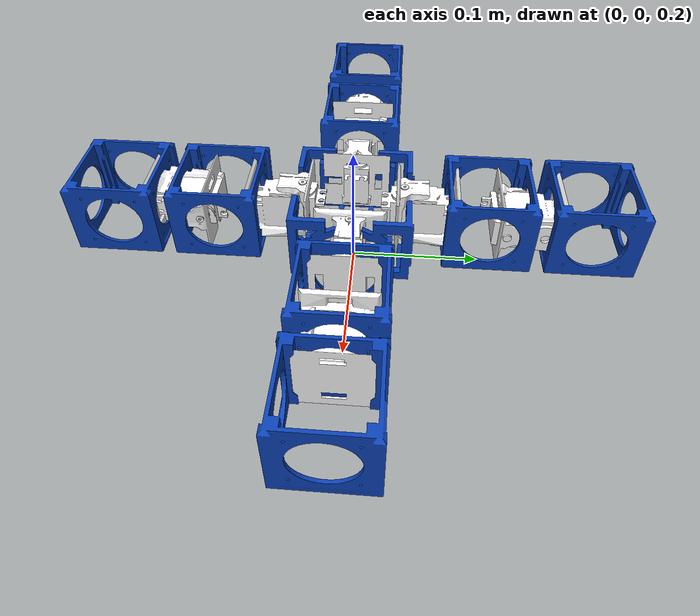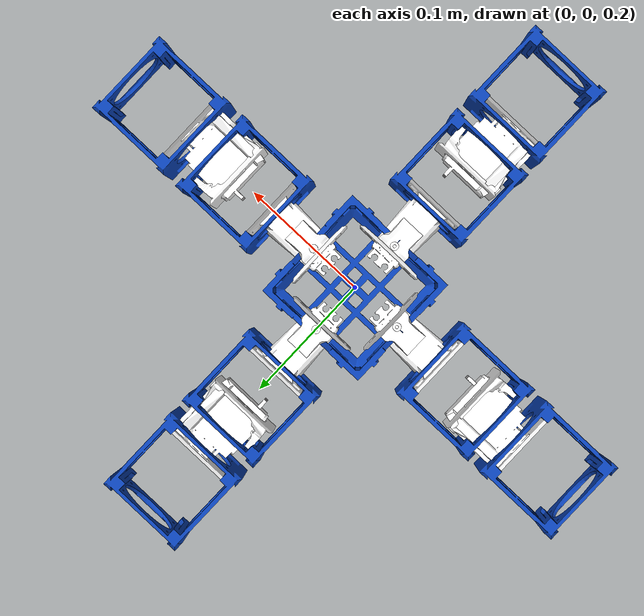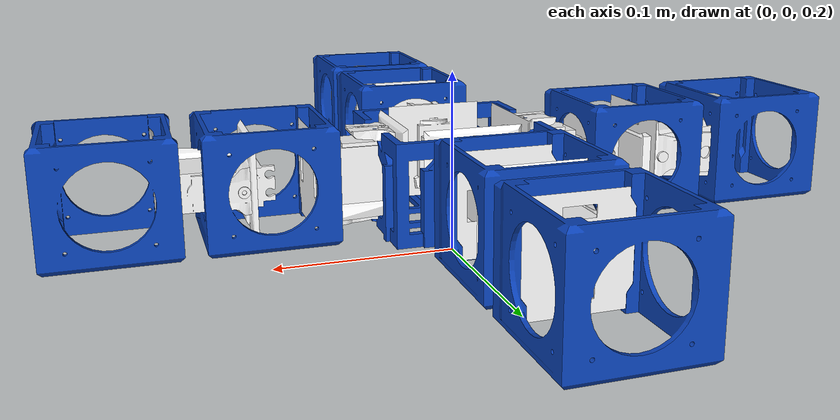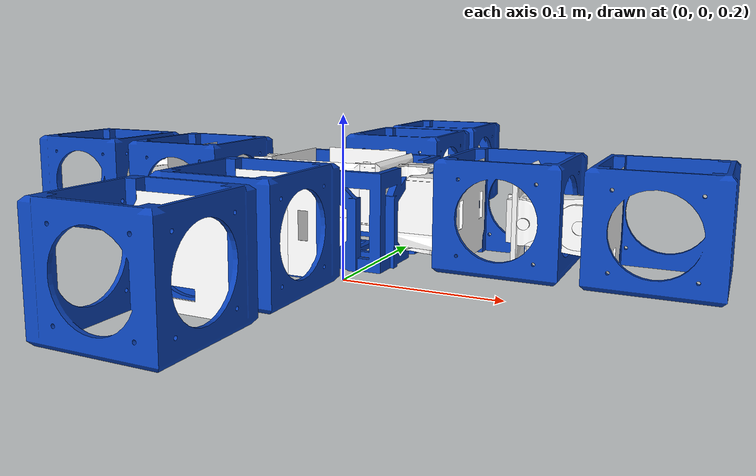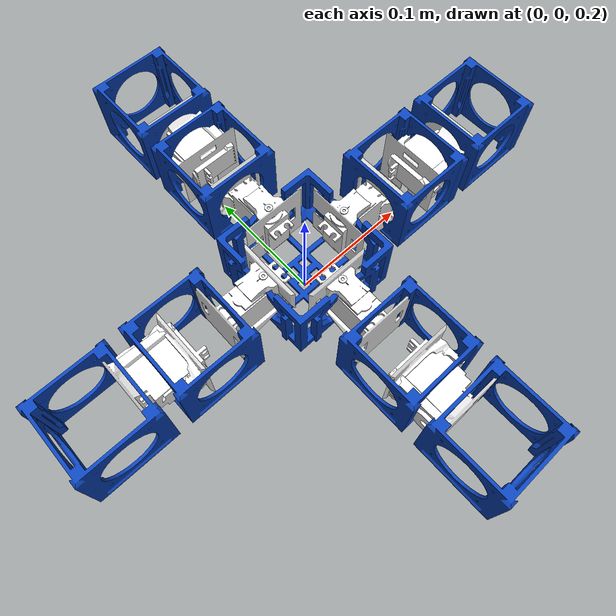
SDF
<?xml version="1.0" ?>
<sdf version="1.6">
	<model name="example_spider">
		<pose>0.000000e+00 0.000000e+00 2.500000e-01 0.000000e+00 -0.000000e+00 0.000000e+00</pose>
		<joint name="component_S_ActiveHinge__joint" type="revolute">
			<pose>-9.430986e-18 3.110825e-02 -1.755849e-17 1.570796e+00 -3.330669e-16 -1.570796e+00</pose>
			<parent>Core</parent>
			<child>S_Leg</child>
			<axis>
				<xyz>0.000000e+00 1.000000e+00 0.000000e+00</xyz>
				<use_parent_model_frame>0</use_parent_model_frame>
				<limit>
					<lower>-7.853982e-01</lower>
					<upper>7.853982e-01</upper>
					<effort>1.765800e-01</effort>
					<velocity>5.235988e+00</velocity>
				</limit>
			</axis>
		</joint>
		<joint name="component_SNN_ActiveHinge__joint" type="revolute">
			<pose>-1.300223e-17 2.747656e-02 -1.539957e-17 -9.420555e-16 -6.280370e-16 -1.570796e+00</pose>
			<parent>S_Leg</parent>
			<child>SNN_Leg</child>
			<axis>
				<xyz>0.000000e+00 1.000000e+00 0.000000e+00</xyz>
				<use_parent_model_frame>0</use_parent_model_frame>
				<limit>
					<lower>-7.853982e-01</lower>
					<upper>7.853982e-01</upper>
					<effort>1.765800e-01</effort>
					<velocity>5.235988e+00</velocity>
				</limit>
			</axis>
		</joint>
		<joint name="component_N_ActiveHinge__joint" type="revolute">
			<pose>-8.717806e-18 -3.110825e-02 1.048457e-17 1.570796e+00 3.330669e-16 1.570796e+00</pose>
			<parent>Core</parent>
			<child>N_Leg</child>
			<axis>
				<xyz>0.000000e+00 1.000000e+00 0.000000e+00</xyz>
				<use_parent_model_frame>0</use_parent_model_frame>
				<limit>
					<lower>-7.853982e-01</lower>
					<upper>7.853982e-01</upper>
					<effort>1.765800e-01</effort>
					<velocity>5.235988e+00</velocity>
				</limit>
			</axis>
		</joint>
		<joint name="component_NNN_ActiveHinge__joint" type="revolute">
			<pose>1.194569e-17 -2.747656e-02 1.294222e-17 -4.710277e-16 4.710277e-16 1.570796e+00</pose>
			<parent>N_Leg</parent>
			<child>NNN_Leg</child>
			<axis>
				<xyz>0.000000e+00 1.000000e+00 0.000000e+00</xyz>
				<use_parent_model_frame>0</use_parent_model_frame>
				<limit>
					<lower>-7.853982e-01</lower>
					<upper>7.853982e-01</upper>
					<effort>1.765800e-01</effort>
					<velocity>5.235988e+00</velocity>
				</limit>
			</axis>
		</joint>
		<joint name="component_E_ActiveHinge__joint" type="revolute">
			<pose>-3.110825e-02 0.000000e+00 0.000000e+00 1.570796e+00 -0.000000e+00 -0.000000e+00</pose>
			<parent>Core</parent>
			<child>E_Leg</child>
			<axis>
				<xyz>0.000000e+00 1.000000e+00 0.000000e+00</xyz>
				<use_parent_model_frame>0</use_parent_model_frame>
				<limit>
					<lower>-7.853982e-01</lower>
					<upper>7.853982e-01</upper>
					<effort>1.765800e-01</effort>
					<velocity>5.235988e+00</velocity>
				</limit>
			</axis>
		</joint>
		<joint name="component_ENN_ActiveHinge__joint" type="revolute">
			<pose>-2.747656e-02 0.000000e+00 0.000000e+00 0.000000e+00 -0.000000e+00 0.000000e+00</pose>
			<parent>E_Leg</parent>
			<child>ENN_Leg</child>
			<axis>
				<xyz>0.000000e+00 1.000000e+00 0.000000e+00</xyz>
				<use_parent_model_frame>0</use_parent_model_frame>
				<limit>
					<lower>-7.853982e-01</lower>
					<upper>7.853982e-01</upper>
					<effort>1.765800e-01</effort>
					<velocity>5.235988e+00</velocity>
				</limit>
			</axis>
		</joint>
		<joint name="component_W_ActiveHinge__joint" type="revolute">
			<pose>3.110825e-02 0.000000e+00 0.000000e+00 1.570796e+00 -0.000000e+00 3.141593e+00</pose>
			<parent>Core</parent>
			<child>W_Leg</child>
			<axis>
				<xyz>0.000000e+00 1.000000e+00 0.000000e+00</xyz>
				<use_parent_model_frame>0</use_parent_model_frame>
				<limit>
					<lower>-7.853982e-01</lower>
					<upper>7.853982e-01</upper>
					<effort>1.765800e-01</effort>
					<velocity>5.235988e+00</velocity>
				</limit>
			</axis>
		</joint>
		<joint name="component_WNN_ActiveHinge__joint" type="revolute">
			<pose>2.747656e-02 0.000000e+00 0.000000e+00 0.000000e+00 -0.000000e+00 3.141593e+00</pose>
			<parent>W_Leg</parent>
			<child>WNN_Leg</child>
			<axis>
				<xyz>0.000000e+00 1.000000e+00 0.000000e+00</xyz>
				<use_parent_model_frame>0</use_parent_model_frame>
				<limit>
					<lower>-7.853982e-01</lower>
					<upper>7.853982e-01</upper>
					<effort>1.765800e-01</effort>
					<velocity>5.235988e+00</velocity>
				</limit>
			</axis>
		</joint>
		<link name="Core">
			<pose>1.400054e-19 0.000000e+00 0.000000e+00 0.000000e+00 -0.000000e+00 0.000000e+00</pose>
			<self_collide>True</self_collide>
			<sensor name="core-imu_sensor" type="imu">
				<pose>-1.400054e-19 0.000000e+00 0.000000e+00 0.000000e+00 -0.000000e+00 0.000000e+00</pose>
				<always_on>True</always_on>
			</sensor>
			<visual name="component__CoreComponent__box_visual">
				<pose>-1.400054e-19 0.000000e+00 0.000000e+00 0.000000e+00 -0.000000e+00 0.000000e+00</pose>
				<material>
					<ambient>0.04 0.26 0.72 1.0</ambient>
					<diffuse>0.04 0.26 0.72 1.0</diffuse>
					<specular>0.1 0.1 0.1 1.0</specular>
				</material>
				<geometry>
					<mesh>
						<uri>model://rg_robot/meshes/CoreComponent.dae</uri>
					</mesh>
				</geometry>
			</visual>
			<collision name="component__CoreComponent__box_collision">
				<pose>-1.400054e-19 0.000000e+00 0.000000e+00 0.000000e+00 -0.000000e+00 0.000000e+00</pose>
				<surface>
					<contact>
						<ode>
							<kd>3.333333e+06</kd>
							<kp>9.000000e+04</kp>
						</ode>
					</contact>
					<friction>
						<ode>
							<mu>1.000000e+00</mu>
							<mu2>1.000000e+00</mu2>
							<slip1>1.000000e-02</slip1>
							<slip2>1.000000e-02</slip2>
						</ode>
						<bullet>
							<friction>1.000000e+00</friction>
							<friction2>1.000000e+00</friction2>
						</bullet>
					</friction>
				</surface>
				<geometry>
					<box>
						<size>8.900000e-02 8.900000e-02 4.500000e-02</size>
					</box>
				</geometry>
			</collision>
			<visual name="component_S_ActiveHinge__frame_visual">
				<pose>2.302485e-18 -5.550000e-02 6.106227e-19 1.570796e+00 -5.551115e-17 -1.570796e+00</pose>
				<material>
					<ambient>0.98 0.98 0.98 1.0</ambient>
					<diffuse>0.98 0.98 0.98 1.0</diffuse>
					<specular>0.1 0.1 0.1 1.0</specular>
				</material>
				<geometry>
					<mesh>
						<uri>model://rg_robot/meshes/ActiveHinge_Frame.dae</uri>
					</mesh>
				</geometry>
			</visual>
			<collision name="component_S_ActiveHinge__frame_collision">
				<pose>2.302485e-18 -5.550000e-02 6.106227e-19 1.570796e+00 -5.551115e-17 -1.570796e+00</pose>
				<surface>
					<contact>
						<ode>
							<kd>3.333333e+06</kd>
							<kp>9.000000e+04</kp>
						</ode>
					</contact>
					<friction>
						<ode>
							<mu>1.000000e+00</mu>
							<mu2>1.000000e+00</mu2>
							<slip1>1.000000e-02</slip1>
							<slip2>1.000000e-02</slip2>
						</ode>
						<bullet>
							<friction>1.000000e+00</friction>
							<friction2>1.000000e+00</friction2>
						</bullet>
					</friction>
				</surface>
				<geometry>
					<box>
						<size>2.200000e-02 3.575000e-02 1.000000e-02</size>
					</box>
				</geometry>
			</collision>
			<visual name="component_N_ActiveHinge__frame_visual">
				<pose>2.302485e-18 5.550000e-02 -6.106227e-19 1.570796e+00 5.551115e-17 1.570796e+00</pose>
				<material>
					<ambient>0.98 0.98 0.98 1.0</ambient>
					<diffuse>0.98 0.98 0.98 1.0</diffuse>
					<specular>0.1 0.1 0.1 1.0</specular>
				</material>
				<geometry>
					<mesh>
						<uri>model://rg_robot/meshes/ActiveHinge_Frame.dae</uri>
					</mesh>
				</geometry>
			</visual>
			<collision name="component_N_ActiveHinge__frame_collision">
				<pose>2.302485e-18 5.550000e-02 -6.106227e-19 1.570796e+00 5.551115e-17 1.570796e+00</pose>
				<surface>
					<contact>
						<ode>
							<kd>3.333333e+06</kd>
							<kp>9.000000e+04</kp>
						</ode>
					</contact>
					<friction>
						<ode>
							<mu>1.000000e+00</mu>
							<mu2>1.000000e+00</mu2>
							<slip1>1.000000e-02</slip1>
							<slip2>1.000000e-02</slip2>
						</ode>
						<bullet>
							<friction>1.000000e+00</friction>
							<friction2>1.000000e+00</friction2>
						</bullet>
					</friction>
				</surface>
				<geometry>
					<box>
						<size>2.200000e-02 3.575000e-02 1.000000e-02</size>
					</box>
				</geometry>
			</collision>
			<visual name="component_E_ActiveHinge__frame_visual">
				<pose>5.550000e-02 0.000000e+00 0.000000e+00 1.570796e+00 -0.000000e+00 -0.000000e+00</pose>
				<material>
					<ambient>0.98 0.98 0.98 1.0</ambient>
					<diffuse>0.98 0.98 0.98 1.0</diffuse>
					<specular>0.1 0.1 0.1 1.0</specular>
				</material>
				<geometry>
					<mesh>
						<uri>model://rg_robot/meshes/ActiveHinge_Frame.dae</uri>
					</mesh>
				</geometry>
			</visual>
			<collision name="component_E_ActiveHinge__frame_collision">
				<pose>5.550000e-02 0.000000e+00 0.000000e+00 1.570796e+00 -0.000000e+00 -0.000000e+00</pose>
				<surface>
					<contact>
						<ode>
							<kd>3.333333e+06</kd>
							<kp>9.000000e+04</kp>
						</ode>
					</contact>
					<friction>
						<ode>
							<mu>1.000000e+00</mu>
							<mu2>1.000000e+00</mu2>
							<slip1>1.000000e-02</slip1>
							<slip2>1.000000e-02</slip2>
						</ode>
						<bullet>
							<friction>1.000000e+00</friction>
							<friction2>1.000000e+00</friction2>
						</bullet>
					</friction>
				</surface>
				<geometry>
					<box>
						<size>2.200000e-02 3.575000e-02 1.000000e-02</size>
					</box>
				</geometry>
			</collision>
			<visual name="component_W_ActiveHinge__frame_visual">
				<pose>-5.550000e-02 0.000000e+00 0.000000e+00 1.570796e+00 -0.000000e+00 3.141593e+00</pose>
				<material>
					<ambient>0.98 0.98 0.98 1.0</ambient>
					<diffuse>0.98 0.98 0.98 1.0</diffuse>
					<specular>0.1 0.1 0.1 1.0</specular>
				</material>
				<geometry>
					<mesh>
						<uri>model://rg_robot/meshes/ActiveHinge_Frame.dae</uri>
					</mesh>
				</geometry>
			</visual>
			<collision name="component_W_ActiveHinge__frame_collision">
				<pose>-5.550000e-02 0.000000e+00 0.000000e+00 1.570796e+00 -0.000000e+00 3.141593e+00</pose>
				<surface>
					<contact>
						<ode>
							<kd>3.333333e+06</kd>
							<kp>9.000000e+04</kp>
						</ode>
					</contact>
					<friction>
						<ode>
							<mu>1.000000e+00</mu>
							<mu2>1.000000e+00</mu2>
							<slip1>1.000000e-02</slip1>
							<slip2>1.000000e-02</slip2>
						</ode>
						<bullet>
							<friction>1.000000e+00</friction>
							<friction2>1.000000e+00</friction2>
						</bullet>
					</friction>
				</surface>
				<geometry>
					<box>
						<size>2.200000e-02 3.575000e-02 1.000000e-02</size>
					</box>
				</geometry>
			</collision>
			<inertial>
				<pose>0.000000e+00 0.000000e+00 0.000000e+00 0.000000e+00 -0.000000e+00 0.000000e+00</pose>
				<mass>9.680000e-02</mass>
				<inertia>
					<ixx>8.595755208333334e-05</ixx>
					<ixy>0.0</ixy>
					<ixz>0.0</ixz>
					<iyy>8.595755208333334e-05</iyy>
					<iyz>1.4866158073075413e-22</iyz>
					<izz>0.00014009163333333333</izz>
				</inertia>
			</inertial>
		</link>
		<link name="S_Leg">
			<pose>1.332232e-17 -9.125825e-02 1.946807e-17 0.000000e+00 -0.000000e+00 0.000000e+00</pose>
			<self_collide>True</self_collide>
			<visual name="component_S_ActiveHinge__servo_visual">
				<pose>-6.599917e-18 2.260825e-02 -1.472742e-17 1.570796e+00 -3.330669e-16 -1.570796e+00</pose>
				<material>
					<ambient>0.98 0.98 0.98 1.0</ambient>
					<diffuse>0.98 0.98 0.98 1.0</diffuse>
					<specular>0.1 0.1 0.1 1.0</specular>
				</material>
				<geometry>
					<mesh>
						<uri>model://rg_robot/meshes/ActiveCardanHinge_Servo_Holder.dae</uri>
					</mesh>
				</geometry>
			</visual>
			<collision name="component_S_ActiveHinge__servo_collision">
				<pose>-5.808883e-18 2.023325e-02 -1.393639e-17 1.570796e+00 -3.330669e-16 -1.570796e+00</pose>
				<surface>
					<contact>
						<ode>
							<kd>3.333333e+06</kd>
							<kp>9.000000e+04</kp>
						</ode>
					</contact>
					<friction>
						<ode>
							<mu>1.000000e+00</mu>
							<mu2>1.000000e+00</mu2>
							<slip1>1.000000e-02</slip1>
							<slip2>1.000000e-02</slip2>
						</ode>
						<bullet>
							<friction>1.000000e+00</friction>
							<friction2>1.000000e+00</friction2>
						</bullet>
					</friction>
				</surface>
				<geometry>
					<box>
						<size>2.450000e-02 2.575000e-02 1.500000e-02</size>
					</box>
				</geometry>
			</collision>
			<collision name="component_S_ActiveHinge__servo2_collision">
				<pose>-1.451258e-18 8.483254e-03 1.000000e-03 1.570796e+00 -3.330669e-16 -1.570796e+00</pose>
				<surface>
					<contact>
						<ode>
							<kd>3.333333e+06</kd>
							<kp>9.000000e+04</kp>
						</ode>
					</contact>
					<friction>
						<ode>
							<mu>1.000000e+00</mu>
							<mu2>1.000000e+00</mu2>
							<slip1>1.000000e-02</slip1>
							<slip2>1.000000e-02</slip2>
						</ode>
						<bullet>
							<friction>1.000000e+00</friction>
							<friction2>1.000000e+00</friction2>
						</bullet>
					</friction>
				</surface>
				<geometry>
					<box>
						<size>1.000000e-03 3.400000e-02 3.400000e-02</size>
					</box>
				</geometry>
			</collision>
			<visual name="component_SN_FixedBrick__box_visual">
				<pose>3.017390e-18 -1.101675e-02 7.019074e-18 8.881784e-16 -6.661338e-16 -3.141593e+00</pose>
				<material>
					<ambient>0.04 0.26 0.72 1.0</ambient>
					<diffuse>0.04 0.26 0.72 1.0</diffuse>
					<specular>0.1 0.1 0.1 1.0</specular>
				</material>
				<geometry>
					<mesh>
						<uri>model://rg_robot/meshes/FixedBrick.dae</uri>
					</mesh>
				</geometry>
			</visual>
			<collision name="component_SN_FixedBrick__box_collision">
				<pose>3.017390e-18 -1.101675e-02 7.019074e-18 8.881784e-16 -6.661338e-16 -3.141593e+00</pose>
				<surface>
					<contact>
						<ode>
							<kd>3.333333e+06</kd>
							<kp>9.000000e+04</kp>
						</ode>
					</contact>
					<friction>
						<ode>
							<mu>1.000000e+00</mu>
							<mu2>1.000000e+00</mu2>
							<slip1>1.000000e-02</slip1>
							<slip2>1.000000e-02</slip2>
						</ode>
						<bullet>
							<friction>1.000000e+00</friction>
							<friction2>1.000000e+00</friction2>
						</bullet>
					</friction>
				</surface>
				<geometry>
					<box>
						<size>4.100000e-02 4.100000e-02 3.550000e-02</size>
					</box>
				</geometry>
			</collision>
			<visual name="component_SNN_ActiveHinge__frame_visual">
				<pose>1.264857e-17 -4.101675e-02 3.166642e-17 -7.065416e-16 -7.065416e-16 -1.570796e+00</pose>
				<material>
					<ambient>0.98 0.98 0.98 1.0</ambient>
					<diffuse>0.98 0.98 0.98 1.0</diffuse>
					<specular>0.1 0.1 0.1 1.0</specular>
				</material>
				<geometry>
					<mesh>
						<uri>model://rg_robot/meshes/ActiveHinge_Frame.dae</uri>
					</mesh>
				</geometry>
			</visual>
			<collision name="component_SNN_ActiveHinge__frame_collision">
				<pose>1.264857e-17 -4.101675e-02 3.166642e-17 -7.065416e-16 -7.065416e-16 -1.570796e+00</pose>
				<surface>
					<contact>
						<ode>
							<kd>3.333333e+06</kd>
							<kp>9.000000e+04</kp>
						</ode>
					</contact>
					<friction>
						<ode>
							<mu>1.000000e+00</mu>
							<mu2>1.000000e+00</mu2>
							<slip1>1.000000e-02</slip1>
							<slip2>1.000000e-02</slip2>
						</ode>
						<bullet>
							<friction>1.000000e+00</friction>
							<friction2>1.000000e+00</friction2>
						</bullet>
					</friction>
				</surface>
				<geometry>
					<box>
						<size>2.200000e-02 3.575000e-02 1.000000e-02</size>
					</box>
				</geometry>
			</collision>
			<inertial>
				<pose>0.000000e+00 0.000000e+00 0.000000e+00 0.000000e+00 -0.000000e+00 0.000000e+00</pose>
				<mass>2.090000e-02</mass>
				<inertia>
					<ixx>1.1312736847089305e-05</ixx>
					<ixy>2.1648188582986934e-21</ixy>
					<ixz>-1.3720940220056711e-25</ixz>
					<iyy>3.36133489583333e-06</iyy>
					<iyz>6.012418896988902e-21</iyz>
					<izz>1.1508719659589309e-05</izz>
				</inertia>
			</inertial>
		</link>
		<link name="SNN_Leg">
			<pose>4.103813e-17 -1.644016e-01 6.952509e-17 0.000000e+00 -0.000000e+00 0.000000e+00</pose>
			<self_collide>True</self_collide>
			<visual name="component_SNN_ActiveHinge__servo_visual">
				<pose>-9.227468e-18 1.897656e-02 -1.006126e-17 -9.420555e-16 -6.280370e-16 -1.570796e+00</pose>
				<material>
					<ambient>0.98 0.98 0.98 1.0</ambient>
					<diffuse>0.98 0.98 0.98 1.0</diffuse>
					<specular>0.1 0.1 0.1 1.0</specular>
				</material>
				<geometry>
					<mesh>
						<uri>model://rg_robot/meshes/ActiveCardanHinge_Servo_Holder.dae</uri>
					</mesh>
				</geometry>
			</visual>
			<collision name="component_SNN_ActiveHinge__servo_collision">
				<pose>-8.172756e-18 1.660156e-02 -8.569672e-18 -9.420555e-16 -6.280370e-16 -1.570796e+00</pose>
				<surface>
					<contact>
						<ode>
							<kd>3.333333e+06</kd>
							<kp>9.000000e+04</kp>
						</ode>
					</contact>
					<friction>
						<ode>
							<mu>1.000000e+00</mu>
							<mu2>1.000000e+00</mu2>
							<slip1>1.000000e-02</slip1>
							<slip2>1.000000e-02</slip2>
						</ode>
						<bullet>
							<friction>1.000000e+00</friction>
							<friction2>1.000000e+00</friction2>
						</bullet>
					</friction>
				</surface>
				<geometry>
					<box>
						<size>2.450000e-02 2.575000e-02 1.500000e-02</size>
					</box>
				</geometry>
			</collision>
			<collision name="component_SNN_ActiveHinge__servo2_collision">
				<pose>1.000000e-03 4.851562e-03 -2.132293e-18 -9.420555e-16 -6.280370e-16 -1.570796e+00</pose>
				<surface>
					<contact>
						<ode>
							<kd>3.333333e+06</kd>
							<kp>9.000000e+04</kp>
						</ode>
					</contact>
					<friction>
						<ode>
							<mu>1.000000e+00</mu>
							<mu2>1.000000e+00</mu2>
							<slip1>1.000000e-02</slip1>
							<slip2>1.000000e-02</slip2>
						</ode>
						<bullet>
							<friction>1.000000e+00</friction>
							<friction2>1.000000e+00</friction2>
						</bullet>
					</friction>
				</surface>
				<geometry>
					<box>
						<size>1.000000e-03 3.400000e-02 3.400000e-02</size>
					</box>
				</geometry>
			</collision>
			<visual name="component_SNNN_FixedBrick__box_visual">
				<pose>7.211255e-18 -1.464844e-02 7.561476e-18 4.440892e-16 -9.420555e-16 -3.141593e+00</pose>
				<material>
					<ambient>0.04 0.26 0.72 1.0</ambient>
					<diffuse>0.04 0.26 0.72 1.0</diffuse>
					<specular>0.1 0.1 0.1 1.0</specular>
				</material>
				<geometry>
					<mesh>
						<uri>model://rg_robot/meshes/FixedBrick.dae</uri>
					</mesh>
				</geometry>
			</visual>
			<collision name="component_SNNN_FixedBrick__box_collision">
				<pose>7.211255e-18 -1.464844e-02 7.561476e-18 4.440892e-16 -9.420555e-16 -3.141593e+00</pose>
				<surface>
					<contact>
						<ode>
							<kd>3.333333e+06</kd>
							<kp>9.000000e+04</kp>
						</ode>
					</contact>
					<friction>
						<ode>
							<mu>1.000000e+00</mu>
							<mu2>1.000000e+00</mu2>
							<slip1>1.000000e-02</slip1>
							<slip2>1.000000e-02</slip2>
						</ode>
						<bullet>
							<friction>1.000000e+00</friction>
							<friction2>1.000000e+00</friction2>
						</bullet>
					</friction>
				</surface>
				<geometry>
					<box>
						<size>4.100000e-02 4.100000e-02 3.550000e-02</size>
					</box>
				</geometry>
			</collision>
			<inertial>
				<pose>0.000000e+00 0.000000e+00 0.000000e+00 0.000000e+00 -0.000000e+00 0.000000e+00</pose>
				<mass>1.920000e-02</mass>
				<inertia>
					<ixx>7.788189453124997e-06</ixx>
					<ixy>2.2776669243582927e-21</ixy>
					<ixz>6.46423747472484e-22</ixz>
					<iyy>3.1661093749999973e-06</iyy>
					<iyz>2.745796473977747e-21</iyz>
					<izz>8.474373828125e-06</izz>
				</inertia>
			</inertial>
		</link>
		<link name="N_Leg">
			<pose>1.260914e-17 9.125825e-02 -1.239415e-17 0.000000e+00 -0.000000e+00 0.000000e+00</pose>
			<self_collide>True</self_collide>
			<visual name="component_N_ActiveHinge__servo_visual">
				<pose>-5.886737e-18 -2.260825e-02 7.653500e-18 1.570796e+00 3.330669e-16 1.570796e+00</pose>
				<material>
					<ambient>0.98 0.98 0.98 1.0</ambient>
					<diffuse>0.98 0.98 0.98 1.0</diffuse>
					<specular>0.1 0.1 0.1 1.0</specular>
				</material>
				<geometry>
					<mesh>
						<uri>model://rg_robot/meshes/ActiveCardanHinge_Servo_Holder.dae</uri>
					</mesh>
				</geometry>
			</visual>
			<collision name="component_N_ActiveHinge__servo_collision">
				<pose>-5.095703e-18 -2.023325e-02 6.862466e-18 1.570796e+00 3.330669e-16 1.570796e+00</pose>
				<surface>
					<contact>
						<ode>
							<kd>3.333333e+06</kd>
							<kp>9.000000e+04</kp>
						</ode>
					</contact>
					<friction>
						<ode>
							<mu>1.000000e+00</mu>
							<mu2>1.000000e+00</mu2>
							<slip1>1.000000e-02</slip1>
							<slip2>1.000000e-02</slip2>
						</ode>
						<bullet>
							<friction>1.000000e+00</friction>
							<friction2>1.000000e+00</friction2>
						</bullet>
					</friction>
				</surface>
				<geometry>
					<box>
						<size>2.450000e-02 2.575000e-02 1.500000e-02</size>
					</box>
				</geometry>
			</collision>
			<collision name="component_N_ActiveHinge__servo2_collision">
				<pose>-1.626256e-18 -8.483254e-03 1.000000e-03 1.570796e+00 3.330669e-16 1.570796e+00</pose>
				<surface>
					<contact>
						<ode>
							<kd>3.333333e+06</kd>
							<kp>9.000000e+04</kp>
						</ode>
					</contact>
					<friction>
						<ode>
							<mu>1.000000e+00</mu>
							<mu2>1.000000e+00</mu2>
							<slip1>1.000000e-02</slip1>
							<slip2>1.000000e-02</slip2>
						</ode>
						<bullet>
							<friction>1.000000e+00</friction>
							<friction2>1.000000e+00</friction2>
						</bullet>
					</friction>
				</surface>
				<geometry>
					<box>
						<size>1.000000e-03 3.400000e-02 3.400000e-02</size>
					</box>
				</geometry>
			</collision>
			<visual name="component_NN_FixedBrick__box_visual">
				<pose>3.245202e-18 1.101675e-02 -3.545875e-18 -3.330669e-16 -6.661338e-16 -2.242545e-16</pose>
				<material>
					<ambient>0.04 0.26 0.72 1.0</ambient>
					<diffuse>0.04 0.26 0.72 1.0</diffuse>
					<specular>0.1 0.1 0.1 1.0</specular>
				</material>
				<geometry>
					<mesh>
						<uri>model://rg_robot/meshes/FixedBrick.dae</uri>
					</mesh>
				</geometry>
			</visual>
			<collision name="component_NN_FixedBrick__box_collision">
				<pose>3.245202e-18 1.101675e-02 -3.545875e-18 -3.330669e-16 -6.661338e-16 -2.242545e-16</pose>
				<surface>
					<contact>
						<ode>
							<kd>3.333333e+06</kd>
							<kp>9.000000e+04</kp>
						</ode>
					</contact>
					<friction>
						<ode>
							<mu>1.000000e+00</mu>
							<mu2>1.000000e+00</mu2>
							<slip1>1.000000e-02</slip1>
							<slip2>1.000000e-02</slip2>
						</ode>
						<bullet>
							<friction>1.000000e+00</friction>
							<friction2>1.000000e+00</friction2>
						</bullet>
					</friction>
				</surface>
				<geometry>
					<box>
						<size>4.100000e-02 4.100000e-02 3.550000e-02</size>
					</box>
				</geometry>
			</collision>
			<visual name="component_NNN_ActiveHinge__frame_visual">
				<pose>7.506038e-18 4.101675e-02 -1.505545e-17 -4.710277e-16 4.710277e-16 1.570796e+00</pose>
				<material>
					<ambient>0.98 0.98 0.98 1.0</ambient>
					<diffuse>0.98 0.98 0.98 1.0</diffuse>
					<specular>0.1 0.1 0.1 1.0</specular>
				</material>
				<geometry>
					<mesh>
						<uri>model://rg_robot/meshes/ActiveHinge_Frame.dae</uri>
					</mesh>
				</geometry>
			</visual>
			<collision name="component_NNN_ActiveHinge__frame_collision">
				<pose>7.506038e-18 4.101675e-02 -1.505545e-17 -4.710277e-16 4.710277e-16 1.570796e+00</pose>
				<surface>
					<contact>
						<ode>
							<kd>3.333333e+06</kd>
							<kp>9.000000e+04</kp>
						</ode>
					</contact>
					<friction>
						<ode>
							<mu>1.000000e+00</mu>
							<mu2>1.000000e+00</mu2>
							<slip1>1.000000e-02</slip1>
							<slip2>1.000000e-02</slip2>
						</ode>
						<bullet>
							<friction>1.000000e+00</friction>
							<friction2>1.000000e+00</friction2>
						</bullet>
					</friction>
				</surface>
				<geometry>
					<box>
						<size>2.200000e-02 3.575000e-02 1.000000e-02</size>
					</box>
				</geometry>
			</collision>
			<inertial>
				<pose>0.000000e+00 0.000000e+00 0.000000e+00 0.000000e+00 -0.000000e+00 0.000000e+00</pose>
				<mass>2.090000e-02</mass>
				<inertia>
					<ixx>1.1312736847089317e-05</ixx>
					<ixy>-1.751924061738799e-21</ixy>
					<ixz>3.944263415324837e-23</ixz>
					<iyy>3.361334895833333e-06</iyy>
					<iyz>2.9643788204362183e-21</iyz>
					<izz>1.1508719659589315e-05</izz>
				</inertia>
			</inertial>
		</link>
		<link name="NNN_Leg">
			<pose>6.504156e-18 1.644016e-01 -4.258211e-17 0.000000e+00 -0.000000e+00 0.000000e+00</pose>
			<self_collide>True</self_collide>
			<visual name="component_NNN_ActiveHinge__servo_visual">
				<pose>8.170927e-18 -1.897656e-02 8.938487e-18 -4.710277e-16 4.710277e-16 1.570796e+00</pose>
				<material>
					<ambient>0.98 0.98 0.98 1.0</ambient>
					<diffuse>0.98 0.98 0.98 1.0</diffuse>
					<specular>0.1 0.1 0.1 1.0</specular>
				</material>
				<geometry>
					<mesh>
						<uri>model://rg_robot/meshes/ActiveCardanHinge_Servo_Holder.dae</uri>
					</mesh>
				</geometry>
			</visual>
			<collision name="component_NNN_ActiveHinge__servo_collision">
				<pose>7.116215e-18 -1.660156e-02 7.819796e-18 -4.710277e-16 4.710277e-16 1.570796e+00</pose>
				<surface>
					<contact>
						<ode>
							<kd>3.333333e+06</kd>
							<kp>9.000000e+04</kp>
						</ode>
					</contact>
					<friction>
						<ode>
							<mu>1.000000e+00</mu>
							<mu2>1.000000e+00</mu2>
							<slip1>1.000000e-02</slip1>
							<slip2>1.000000e-02</slip2>
						</ode>
						<bullet>
							<friction>1.000000e+00</friction>
							<friction2>1.000000e+00</friction2>
						</bullet>
					</friction>
				</surface>
				<geometry>
					<box>
						<size>2.450000e-02 2.575000e-02 1.500000e-02</size>
					</box>
				</geometry>
			</collision>
			<collision name="component_NNN_ActiveHinge__servo2_collision">
				<pose>-1.000000e-03 -4.851562e-03 1.814193e-18 -4.710277e-16 4.710277e-16 1.570796e+00</pose>
				<surface>
					<contact>
						<ode>
							<kd>3.333333e+06</kd>
							<kp>9.000000e+04</kp>
						</ode>
					</contact>
					<friction>
						<ode>
							<mu>1.000000e+00</mu>
							<mu2>1.000000e+00</mu2>
							<slip1>1.000000e-02</slip1>
							<slip2>1.000000e-02</slip2>
						</ode>
						<bullet>
							<friction>1.000000e+00</friction>
							<friction2>1.000000e+00</friction2>
						</bullet>
					</friction>
				</surface>
				<geometry>
					<box>
						<size>1.000000e-03 3.400000e-02 3.400000e-02</size>
					</box>
				</geometry>
			</collision>
			<visual name="component_NNNN_FixedBrick__box_visual">
				<pose>-6.279013e-18 1.464844e-02 -6.899820e-18 -4.710277e-16 -4.440892e-16 4.186913e-16</pose>
				<material>
					<ambient>0.04 0.26 0.72 1.0</ambient>
					<diffuse>0.04 0.26 0.72 1.0</diffuse>
					<specular>0.1 0.1 0.1 1.0</specular>
				</material>
				<geometry>
					<mesh>
						<uri>model://rg_robot/meshes/FixedBrick.dae</uri>
					</mesh>
				</geometry>
			</visual>
			<collision name="component_NNNN_FixedBrick__box_collision">
				<pose>-6.279013e-18 1.464844e-02 -6.899820e-18 -4.710277e-16 -4.440892e-16 4.186913e-16</pose>
				<surface>
					<contact>
						<ode>
							<kd>3.333333e+06</kd>
							<kp>9.000000e+04</kp>
						</ode>
					</contact>
					<friction>
						<ode>
							<mu>1.000000e+00</mu>
							<mu2>1.000000e+00</mu2>
							<slip1>1.000000e-02</slip1>
							<slip2>1.000000e-02</slip2>
						</ode>
						<bullet>
							<friction>1.000000e+00</friction>
							<friction2>1.000000e+00</friction2>
						</bullet>
					</friction>
				</surface>
				<geometry>
					<box>
						<size>4.100000e-02 4.100000e-02 3.550000e-02</size>
					</box>
				</geometry>
			</collision>
			<inertial>
				<pose>0.000000e+00 0.000000e+00 0.000000e+00 0.000000e+00 -0.000000e+00 0.000000e+00</pose>
				<mass>1.920000e-02</mass>
				<inertia>
					<ixx>7.788189453125e-06</ixx>
					<ixy>1.9805146602050528e-21</ixy>
					<ixz>-3.135776460162391e-22</ixz>
					<iyy>3.166109375e-06</iyy>
					<iyz>2.500339795965217e-21</iyz>
					<izz>8.474373828125e-06</izz>
				</inertia>
			</inertial>
		</link>
		<link name="E_Leg">
			<pose>9.125825e-02 0.000000e+00 0.000000e+00 0.000000e+00 -0.000000e+00 0.000000e+00</pose>
			<self_collide>True</self_collide>
			<visual name="component_E_ActiveHinge__servo_visual">
				<pose>-2.260825e-02 0.000000e+00 0.000000e+00 1.570796e+00 -0.000000e+00 -0.000000e+00</pose>
				<material>
					<ambient>0.98 0.98 0.98 1.0</ambient>
					<diffuse>0.98 0.98 0.98 1.0</diffuse>
					<specular>0.1 0.1 0.1 1.0</specular>
				</material>
				<geometry>
					<mesh>
						<uri>model://rg_robot/meshes/ActiveCardanHinge_Servo_Holder.dae</uri>
					</mesh>
				</geometry>
			</visual>
			<collision name="component_E_ActiveHinge__servo_collision">
				<pose>-2.023325e-02 0.000000e+00 0.000000e+00 1.570796e+00 -0.000000e+00 -0.000000e+00</pose>
				<surface>
					<contact>
						<ode>
							<kd>3.333333e+06</kd>
							<kp>9.000000e+04</kp>
						</ode>
					</contact>
					<friction>
						<ode>
							<mu>1.000000e+00</mu>
							<mu2>1.000000e+00</mu2>
							<slip1>1.000000e-02</slip1>
							<slip2>1.000000e-02</slip2>
						</ode>
						<bullet>
							<friction>1.000000e+00</friction>
							<friction2>1.000000e+00</friction2>
						</bullet>
					</friction>
				</surface>
				<geometry>
					<box>
						<size>2.450000e-02 2.575000e-02 1.500000e-02</size>
					</box>
				</geometry>
			</collision>
			<collision name="component_E_ActiveHinge__servo2_collision">
				<pose>-8.483254e-03 0.000000e+00 1.000000e-03 1.570796e+00 -0.000000e+00 -0.000000e+00</pose>
				<surface>
					<contact>
						<ode>
							<kd>3.333333e+06</kd>
							<kp>9.000000e+04</kp>
						</ode>
					</contact>
					<friction>
						<ode>
							<mu>1.000000e+00</mu>
							<mu2>1.000000e+00</mu2>
							<slip1>1.000000e-02</slip1>
							<slip2>1.000000e-02</slip2>
						</ode>
						<bullet>
							<friction>1.000000e+00</friction>
							<friction2>1.000000e+00</friction2>
						</bullet>
					</friction>
				</surface>
				<geometry>
					<box>
						<size>1.000000e-03 3.400000e-02 3.400000e-02</size>
					</box>
				</geometry>
			</collision>
			<visual name="component_EN_FixedBrick__box_visual">
				<pose>1.101675e-02 0.000000e+00 0.000000e+00 0.000000e+00 0.000000e+00 -1.570796e+00</pose>
				<material>
					<ambient>0.04 0.26 0.72 1.0</ambient>
					<diffuse>0.04 0.26 0.72 1.0</diffuse>
					<specular>0.1 0.1 0.1 1.0</specular>
				</material>
				<geometry>
					<mesh>
						<uri>model://rg_robot/meshes/FixedBrick.dae</uri>
					</mesh>
				</geometry>
			</visual>
			<collision name="component_EN_FixedBrick__box_collision">
				<pose>1.101675e-02 0.000000e+00 0.000000e+00 0.000000e+00 0.000000e+00 -1.570796e+00</pose>
				<surface>
					<contact>
						<ode>
							<kd>3.333333e+06</kd>
							<kp>9.000000e+04</kp>
						</ode>
					</contact>
					<friction>
						<ode>
							<mu>1.000000e+00</mu>
							<mu2>1.000000e+00</mu2>
							<slip1>1.000000e-02</slip1>
							<slip2>1.000000e-02</slip2>
						</ode>
						<bullet>
							<friction>1.000000e+00</friction>
							<friction2>1.000000e+00</friction2>
						</bullet>
					</friction>
				</surface>
				<geometry>
					<box>
						<size>4.100000e-02 4.100000e-02 3.550000e-02</size>
					</box>
				</geometry>
			</collision>
			<visual name="component_ENN_ActiveHinge__frame_visual">
				<pose>4.101675e-02 0.000000e+00 0.000000e+00 0.000000e+00 -0.000000e+00 0.000000e+00</pose>
				<material>
					<ambient>0.98 0.98 0.98 1.0</ambient>
					<diffuse>0.98 0.98 0.98 1.0</diffuse>
					<specular>0.1 0.1 0.1 1.0</specular>
				</material>
				<geometry>
					<mesh>
						<uri>model://rg_robot/meshes/ActiveHinge_Frame.dae</uri>
					</mesh>
				</geometry>
			</visual>
			<collision name="component_ENN_ActiveHinge__frame_collision">
				<pose>4.101675e-02 0.000000e+00 0.000000e+00 0.000000e+00 -0.000000e+00 0.000000e+00</pose>
				<surface>
					<contact>
						<ode>
							<kd>3.333333e+06</kd>
							<kp>9.000000e+04</kp>
						</ode>
					</contact>
					<friction>
						<ode>
							<mu>1.000000e+00</mu>
							<mu2>1.000000e+00</mu2>
							<slip1>1.000000e-02</slip1>
							<slip2>1.000000e-02</slip2>
						</ode>
						<bullet>
							<friction>1.000000e+00</friction>
							<friction2>1.000000e+00</friction2>
						</bullet>
					</friction>
				</surface>
				<geometry>
					<box>
						<size>2.200000e-02 3.575000e-02 1.000000e-02</size>
					</box>
				</geometry>
			</collision>
			<inertial>
				<pose>0.000000e+00 0.000000e+00 0.000000e+00 0.000000e+00 -0.000000e+00 0.000000e+00</pose>
				<mass>2.090000e-02</mass>
				<inertia>
					<ixx>3.361334895833333e-06</ixx>
					<ixy>0.0</ixy>
					<ixz>0.0</ixz>
					<iyy>1.1312736847089317e-05</iyy>
					<iyz>0.0</iyz>
					<izz>1.1508719659589315e-05</izz>
				</inertia>
			</inertial>
		</link>
		<link name="ENN_Leg">
			<pose>1.644016e-01 0.000000e+00 0.000000e+00 0.000000e+00 -0.000000e+00 0.000000e+00</pose>
			<self_collide>True</self_collide>
			<visual name="component_ENN_ActiveHinge__servo_visual">
				<pose>-1.897656e-02 0.000000e+00 0.000000e+00 0.000000e+00 -0.000000e+00 0.000000e+00</pose>
				<material>
					<ambient>0.98 0.98 0.98 1.0</ambient>
					<diffuse>0.98 0.98 0.98 1.0</diffuse>
					<specular>0.1 0.1 0.1 1.0</specular>
				</material>
				<geometry>
					<mesh>
						<uri>model://rg_robot/meshes/ActiveCardanHinge_Servo_Holder.dae</uri>
					</mesh>
				</geometry>
			</visual>
			<collision name="component_ENN_ActiveHinge__servo_collision">
				<pose>-1.660156e-02 0.000000e+00 0.000000e+00 0.000000e+00 -0.000000e+00 0.000000e+00</pose>
				<surface>
					<contact>
						<ode>
							<kd>3.333333e+06</kd>
							<kp>9.000000e+04</kp>
						</ode>
					</contact>
					<friction>
						<ode>
							<mu>1.000000e+00</mu>
							<mu2>1.000000e+00</mu2>
							<slip1>1.000000e-02</slip1>
							<slip2>1.000000e-02</slip2>
						</ode>
						<bullet>
							<friction>1.000000e+00</friction>
							<friction2>1.000000e+00</friction2>
						</bullet>
					</friction>
				</surface>
				<geometry>
					<box>
						<size>2.450000e-02 2.575000e-02 1.500000e-02</size>
					</box>
				</geometry>
			</collision>
			<collision name="component_ENN_ActiveHinge__servo2_collision">
				<pose>-4.851562e-03 1.000000e-03 0.000000e+00 0.000000e+00 -0.000000e+00 0.000000e+00</pose>
				<surface>
					<contact>
						<ode>
							<kd>3.333333e+06</kd>
							<kp>9.000000e+04</kp>
						</ode>
					</contact>
					<friction>
						<ode>
							<mu>1.000000e+00</mu>
							<mu2>1.000000e+00</mu2>
							<slip1>1.000000e-02</slip1>
							<slip2>1.000000e-02</slip2>
						</ode>
						<bullet>
							<friction>1.000000e+00</friction>
							<friction2>1.000000e+00</friction2>
						</bullet>
					</friction>
				</surface>
				<geometry>
					<box>
						<size>1.000000e-03 3.400000e-02 3.400000e-02</size>
					</box>
				</geometry>
			</collision>
			<visual name="component_ENNN_FixedBrick__box_visual">
				<pose>1.464844e-02 0.000000e+00 0.000000e+00 0.000000e+00 0.000000e+00 -1.570796e+00</pose>
				<material>
					<ambient>0.04 0.26 0.72 1.0</ambient>
					<diffuse>0.04 0.26 0.72 1.0</diffuse>
					<specular>0.1 0.1 0.1 1.0</specular>
				</material>
				<geometry>
					<mesh>
						<uri>model://rg_robot/meshes/FixedBrick.dae</uri>
					</mesh>
				</geometry>
			</visual>
			<collision name="component_ENNN_FixedBrick__box_collision">
				<pose>1.464844e-02 0.000000e+00 0.000000e+00 0.000000e+00 0.000000e+00 -1.570796e+00</pose>
				<surface>
					<contact>
						<ode>
							<kd>3.333333e+06</kd>
							<kp>9.000000e+04</kp>
						</ode>
					</contact>
					<friction>
						<ode>
							<mu>1.000000e+00</mu>
							<mu2>1.000000e+00</mu2>
							<slip1>1.000000e-02</slip1>
							<slip2>1.000000e-02</slip2>
						</ode>
						<bullet>
							<friction>1.000000e+00</friction>
							<friction2>1.000000e+00</friction2>
						</bullet>
					</friction>
				</surface>
				<geometry>
					<box>
						<size>4.100000e-02 4.100000e-02 3.550000e-02</size>
					</box>
				</geometry>
			</collision>
			<inertial>
				<pose>0.000000e+00 0.000000e+00 0.000000e+00 0.000000e+00 -0.000000e+00 0.000000e+00</pose>
				<mass>1.920000e-02</mass>
				<inertia>
					<ixx>3.166109375e-06</ixx>
					<ixy>0.0</ixy>
					<ixz>0.0</ixz>
					<iyy>7.788189453125e-06</iyy>
					<iyz>0.0</iyz>
					<izz>8.474373828125e-06</izz>
				</inertia>
			</inertial>
		</link>
		<link name="W_Leg">
			<pose>-9.125825e-02 0.000000e+00 0.000000e+00 0.000000e+00 -0.000000e+00 0.000000e+00</pose>
			<self_collide>True</self_collide>
			<visual name="component_W_ActiveHinge__servo_visual">
				<pose>2.260825e-02 0.000000e+00 0.000000e+00 1.570796e+00 -0.000000e+00 3.141593e+00</pose>
				<material>
					<ambient>0.98 0.98 0.98 1.0</ambient>
					<diffuse>0.98 0.98 0.98 1.0</diffuse>
					<specular>0.1 0.1 0.1 1.0</specular>
				</material>
				<geometry>
					<mesh>
						<uri>model://rg_robot/meshes/ActiveCardanHinge_Servo_Holder.dae</uri>
					</mesh>
				</geometry>
			</visual>
			<collision name="component_W_ActiveHinge__servo_collision">
				<pose>2.023325e-02 0.000000e+00 0.000000e+00 1.570796e+00 -0.000000e+00 3.141593e+00</pose>
				<surface>
					<contact>
						<ode>
							<kd>3.333333e+06</kd>
							<kp>9.000000e+04</kp>
						</ode>
					</contact>
					<friction>
						<ode>
							<mu>1.000000e+00</mu>
							<mu2>1.000000e+00</mu2>
							<slip1>1.000000e-02</slip1>
							<slip2>1.000000e-02</slip2>
						</ode>
						<bullet>
							<friction>1.000000e+00</friction>
							<friction2>1.000000e+00</friction2>
						</bullet>
					</friction>
				</surface>
				<geometry>
					<box>
						<size>2.450000e-02 2.575000e-02 1.500000e-02</size>
					</box>
				</geometry>
			</collision>
			<collision name="component_W_ActiveHinge__servo2_collision">
				<pose>8.483254e-03 0.000000e+00 1.000000e-03 1.570796e+00 -0.000000e+00 3.141593e+00</pose>
				<surface>
					<contact>
						<ode>
							<kd>3.333333e+06</kd>
							<kp>9.000000e+04</kp>
						</ode>
					</contact>
					<friction>
						<ode>
							<mu>1.000000e+00</mu>
							<mu2>1.000000e+00</mu2>
							<slip1>1.000000e-02</slip1>
							<slip2>1.000000e-02</slip2>
						</ode>
						<bullet>
							<friction>1.000000e+00</friction>
							<friction2>1.000000e+00</friction2>
						</bullet>
					</friction>
				</surface>
				<geometry>
					<box>
						<size>1.000000e-03 3.400000e-02 3.400000e-02</size>
					</box>
				</geometry>
			</collision>
			<visual name="component_WN_FixedBrick__box_visual">
				<pose>-1.101675e-02 0.000000e+00 0.000000e+00 0.000000e+00 -0.000000e+00 1.570796e+00</pose>
				<material>
					<ambient>0.04 0.26 0.72 1.0</ambient>
					<diffuse>0.04 0.26 0.72 1.0</diffuse>
					<specular>0.1 0.1 0.1 1.0</specular>
				</material>
				<geometry>
					<mesh>
						<uri>model://rg_robot/meshes/FixedBrick.dae</uri>
					</mesh>
				</geometry>
			</visual>
			<collision name="component_WN_FixedBrick__box_collision">
				<pose>-1.101675e-02 0.000000e+00 0.000000e+00 0.000000e+00 -0.000000e+00 1.570796e+00</pose>
				<surface>
					<contact>
						<ode>
							<kd>3.333333e+06</kd>
							<kp>9.000000e+04</kp>
						</ode>
					</contact>
					<friction>
						<ode>
							<mu>1.000000e+00</mu>
							<mu2>1.000000e+00</mu2>
							<slip1>1.000000e-02</slip1>
							<slip2>1.000000e-02</slip2>
						</ode>
						<bullet>
							<friction>1.000000e+00</friction>
							<friction2>1.000000e+00</friction2>
						</bullet>
					</friction>
				</surface>
				<geometry>
					<box>
						<size>4.100000e-02 4.100000e-02 3.550000e-02</size>
					</box>
				</geometry>
			</collision>
			<visual name="component_WNN_ActiveHinge__frame_visual">
				<pose>-4.101675e-02 0.000000e+00 0.000000e+00 0.000000e+00 -0.000000e+00 3.141593e+00</pose>
				<material>
					<ambient>0.98 0.98 0.98 1.0</ambient>
					<diffuse>0.98 0.98 0.98 1.0</diffuse>
					<specular>0.1 0.1 0.1 1.0</specular>
				</material>
				<geometry>
					<mesh>
						<uri>model://rg_robot/meshes/ActiveHinge_Frame.dae</uri>
					</mesh>
				</geometry>
			</visual>
			<collision name="component_WNN_ActiveHinge__frame_collision">
				<pose>-4.101675e-02 0.000000e+00 0.000000e+00 0.000000e+00 -0.000000e+00 3.141593e+00</pose>
				<surface>
					<contact>
						<ode>
							<kd>3.333333e+06</kd>
							<kp>9.000000e+04</kp>
						</ode>
					</contact>
					<friction>
						<ode>
							<mu>1.000000e+00</mu>
							<mu2>1.000000e+00</mu2>
							<slip1>1.000000e-02</slip1>
							<slip2>1.000000e-02</slip2>
						</ode>
						<bullet>
							<friction>1.000000e+00</friction>
							<friction2>1.000000e+00</friction2>
						</bullet>
					</friction>
				</surface>
				<geometry>
					<box>
						<size>2.200000e-02 3.575000e-02 1.000000e-02</size>
					</box>
				</geometry>
			</collision>
			<inertial>
				<pose>0.000000e+00 0.000000e+00 0.000000e+00 0.000000e+00 -0.000000e+00 0.000000e+00</pose>
				<mass>2.090000e-02</mass>
				<inertia>
					<ixx>3.3613348958333334e-06</ixx>
					<ixy>0.0</ixy>
					<ixz>0.0</ixz>
					<iyy>1.1312736847089317e-05</iyy>
					<iyz>0.0</iyz>
					<izz>1.1508719659589315e-05</izz>
				</inertia>
			</inertial>
		</link>
		<link name="WNN_Leg">
			<pose>-1.644016e-01 0.000000e+00 0.000000e+00 0.000000e+00 -0.000000e+00 0.000000e+00</pose>
			<self_collide>True</self_collide>
			<visual name="component_WNN_ActiveHinge__servo_visual">
				<pose>1.897656e-02 0.000000e+00 0.000000e+00 0.000000e+00 -0.000000e+00 3.141593e+00</pose>
				<material>
					<ambient>0.98 0.98 0.98 1.0</ambient>
					<diffuse>0.98 0.98 0.98 1.0</diffuse>
					<specular>0.1 0.1 0.1 1.0</specular>
				</material>
				<geometry>
					<mesh>
						<uri>model://rg_robot/meshes/ActiveCardanHinge_Servo_Holder.dae</uri>
					</mesh>
				</geometry>
			</visual>
			<collision name="component_WNN_ActiveHinge__servo_collision">
				<pose>1.660156e-02 0.000000e+00 0.000000e+00 0.000000e+00 -0.000000e+00 3.141593e+00</pose>
				<surface>
					<contact>
						<ode>
							<kd>3.333333e+06</kd>
							<kp>9.000000e+04</kp>
						</ode>
					</contact>
					<friction>
						<ode>
							<mu>1.000000e+00</mu>
							<mu2>1.000000e+00</mu2>
							<slip1>1.000000e-02</slip1>
							<slip2>1.000000e-02</slip2>
						</ode>
						<bullet>
							<friction>1.000000e+00</friction>
							<friction2>1.000000e+00</friction2>
						</bullet>
					</friction>
				</surface>
				<geometry>
					<box>
						<size>2.450000e-02 2.575000e-02 1.500000e-02</size>
					</box>
				</geometry>
			</collision>
			<collision name="component_WNN_ActiveHinge__servo2_collision">
				<pose>4.851562e-03 -1.000000e-03 0.000000e+00 0.000000e+00 -0.000000e+00 3.141593e+00</pose>
				<surface>
					<contact>
						<ode>
							<kd>3.333333e+06</kd>
							<kp>9.000000e+04</kp>
						</ode>
					</contact>
					<friction>
						<ode>
							<mu>1.000000e+00</mu>
							<mu2>1.000000e+00</mu2>
							<slip1>1.000000e-02</slip1>
							<slip2>1.000000e-02</slip2>
						</ode>
						<bullet>
							<friction>1.000000e+00</friction>
							<friction2>1.000000e+00</friction2>
						</bullet>
					</friction>
				</surface>
				<geometry>
					<box>
						<size>1.000000e-03 3.400000e-02 3.400000e-02</size>
					</box>
				</geometry>
			</collision>
			<visual name="component_WNNN_FixedBrick__box_visual">
				<pose>-1.464844e-02 0.000000e+00 0.000000e+00 0.000000e+00 -0.000000e+00 1.570796e+00</pose>
				<material>
					<ambient>0.04 0.26 0.72 1.0</ambient>
					<diffuse>0.04 0.26 0.72 1.0</diffuse>
					<specular>0.1 0.1 0.1 1.0</specular>
				</material>
				<geometry>
					<mesh>
						<uri>model://rg_robot/meshes/FixedBrick.dae</uri>
					</mesh>
				</geometry>
			</visual>
			<collision name="component_WNNN_FixedBrick__box_collision">
				<pose>-1.464844e-02 0.000000e+00 0.000000e+00 0.000000e+00 -0.000000e+00 1.570796e+00</pose>
				<surface>
					<contact>
						<ode>
							<kd>3.333333e+06</kd>
							<kp>9.000000e+04</kp>
						</ode>
					</contact>
					<friction>
						<ode>
							<mu>1.000000e+00</mu>
							<mu2>1.000000e+00</mu2>
							<slip1>1.000000e-02</slip1>
							<slip2>1.000000e-02</slip2>
						</ode>
						<bullet>
							<friction>1.000000e+00</friction>
							<friction2>1.000000e+00</friction2>
						</bullet>
					</friction>
				</surface>
				<geometry>
					<box>
						<size>4.100000e-02 4.100000e-02 3.550000e-02</size>
					</box>
				</geometry>
			</collision>
			<inertial>
				<pose>0.000000e+00 0.000000e+00 0.000000e+00 0.000000e+00 -0.000000e+00 0.000000e+00</pose>
				<mass>1.920000e-02</mass>
				<inertia>
					<ixx>3.1661093750000003e-06</ixx>
					<ixy>0.0</ixy>
					<ixz>0.0</ixz>
					<iyy>7.788189453125001e-06</iyy>
					<iyz>0.0</iyz>
					<izz>8.474373828125e-06</izz>
				</inertia>
			</inertial>
		</link>
		<plugin filename="libRobotControlPlugin.so" name="robot_controller">
			<rv:robot_config xmlns:rv="https://github.com/ci-group/revolve">
				<rv:update_rate>8.000000e+00</rv:update_rate>
				<rv:brain>
					<rv:learner evaluation_rate="30.0" type="rlpower"/>
					<rv:controller type="spline"/>
					<rv:sensors>
						<rv:sensor id="Core_sensor" link="Core" part_id="Core" sensor="core-imu_sensor" type="imu"/>
					</rv:sensors>
					<rv:actuators>
						<rv:servomotor id="Leg00Joint__rotate" joint="component_S_ActiveHinge__joint" part_id="Leg00Joint" part_name="component_S_ActiveHinge__joint" type="position">
							<rv:pid>
								<rv:p>9.000000e-01</rv:p>
								<rv:i>0.000000e+00</rv:i>
								<rv:d>0.000000e+00</rv:d>
								<rv:i_max>0.000000e+00</rv:i_max>
								<rv:i_min>0.000000e+00</rv:i_min>
							</rv:pid>
						</rv:servomotor>
						<rv:servomotor id="Leg01Joint__rotate" joint="component_SNN_ActiveHinge__joint" part_id="Leg01Joint" part_name="component_SNN_ActiveHinge__joint" type="position">
							<rv:pid>
								<rv:p>9.000000e-01</rv:p>
								<rv:i>0.000000e+00</rv:i>
								<rv:d>0.000000e+00</rv:d>
								<rv:i_max>0.000000e+00</rv:i_max>
								<rv:i_min>0.000000e+00</rv:i_min>
							</rv:pid>
						</rv:servomotor>
						<rv:servomotor id="Leg10Joint__rotate" joint="component_N_ActiveHinge__joint" part_id="Leg10Joint" part_name="component_N_ActiveHinge__joint" type="position">
							<rv:pid>
								<rv:p>9.000000e-01</rv:p>
								<rv:i>0.000000e+00</rv:i>
								<rv:d>0.000000e+00</rv:d>
								<rv:i_max>0.000000e+00</rv:i_max>
								<rv:i_min>0.000000e+00</rv:i_min>
							</rv:pid>
						</rv:servomotor>
						<rv:servomotor id="Leg11Joint__rotate" joint="component_NNN_ActiveHinge__joint" part_id="Leg11Joint" part_name="component_NNN_ActiveHinge__joint" type="position">
							<rv:pid>
								<rv:p>9.000000e-01</rv:p>
								<rv:i>0.000000e+00</rv:i>
								<rv:d>0.000000e+00</rv:d>
								<rv:i_max>0.000000e+00</rv:i_max>
								<rv:i_min>0.000000e+00</rv:i_min>
							</rv:pid>
						</rv:servomotor>
						<rv:servomotor id="Leg20Joint__rotate" joint="component_E_ActiveHinge__joint" part_id="Leg20Joint" part_name="component_E_ActiveHinge__joint" type="position">
							<rv:pid>
								<rv:p>9.000000e-01</rv:p>
								<rv:i>0.000000e+00</rv:i>
								<rv:d>0.000000e+00</rv:d>
								<rv:i_max>0.000000e+00</rv:i_max>
								<rv:i_min>0.000000e+00</rv:i_min>
							</rv:pid>
						</rv:servomotor>
						<rv:servomotor id="Leg21Joint__rotate" joint="component_ENN_ActiveHinge__joint" part_id="Leg21Joint" part_name="component_ENN_ActiveHinge__joint" type="position">
							<rv:pid>
								<rv:p>9.000000e-01</rv:p>
								<rv:i>0.000000e+00</rv:i>
								<rv:d>0.000000e+00</rv:d>
								<rv:i_max>0.000000e+00</rv:i_max>
								<rv:i_min>0.000000e+00</rv:i_min>
							</rv:pid>
						</rv:servomotor>
						<rv:servomotor id="Leg30Joint__rotate" joint="component_W_ActiveHinge__joint" part_id="Leg30Joint" part_name="component_W_ActiveHinge__joint" type="position">
							<rv:pid>
								<rv:p>9.000000e-01</rv:p>
								<rv:i>0.000000e+00</rv:i>
								<rv:d>0.000000e+00</rv:d>
								<rv:i_max>0.000000e+00</rv:i_max>
								<rv:i_min>0.000000e+00</rv:i_min>
							</rv:pid>
						</rv:servomotor>
						<rv:servomotor id="Leg31Joint__rotate" joint="component_WNN_ActiveHinge__joint" part_id="Leg31Joint" part_name="component_WNN_ActiveHinge__joint" type="position">
							<rv:pid>
								<rv:p>9.000000e-01</rv:p>
								<rv:i>0.000000e+00</rv:i>
								<rv:d>0.000000e+00</rv:d>
								<rv:i_max>0.000000e+00</rv:i_max>
								<rv:i_min>0.000000e+00</rv:i_min>
							</rv:pid>
						</rv:servomotor>
					</rv:actuators>
				</rv:brain>
			</rv:robot_config>
		</plugin>
	</model>
</sdf>
